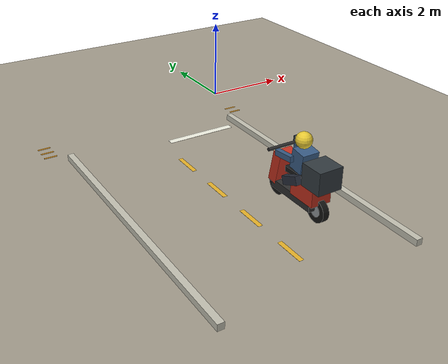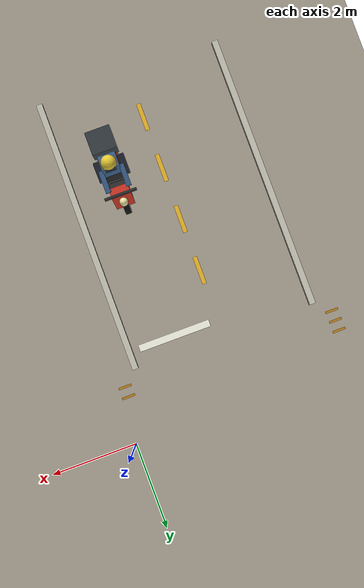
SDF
<sdf version="1.10">
 <world name="swan_market">
  <model name="ground">
   <static>true</static>
   <pose>15 0 -0.1 0 0 0</pose>
   <link name="body">
    <collision name="box_collision"><geometry><box><size>46 24 0.2</size></box></geometry></collision>
    <visual name="box_visual">
     <geometry><box><size>46 24 0.2</size></box></geometry>
     <material><ambient>0.64 0.61 0.55 1</ambient><diffuse>0.64 0.61 0.55 1</diffuse></material>
    </visual>
   </link>
  </model>
  <model name="entrance_curb_-4.83_-1">
   <static>true</static>
   <pose>-4.83 -4.8 0.07 0 0 0</pose>
   <link name="body">
    <collision name="box_collision"><geometry><box><size>0.14 6.4 0.14</size></box></geometry></collision>
    <visual name="box_visual">
     <geometry><box><size>0.14 6.4 0.14</size></box></geometry>
     <material><ambient>0.77 0.76 0.7 1</ambient><diffuse>0.77 0.76 0.7 1</diffuse></material>
    </visual>
   </link>
  </model>
  <model name="entrance_curb_-0.57_-1">
   <static>true</static>
   <pose>-0.57 -4.8 0.07 0 0 0</pose>
   <link name="body">
    <collision name="box_collision"><geometry><box><size>0.14 6.4 0.14</size></box></geometry></collision>
    <visual name="box_visual">
     <geometry><box><size>0.14 6.4 0.14</size></box></geometry>
     <material><ambient>0.77 0.76 0.7 1</ambient><diffuse>0.77 0.76 0.7 1</diffuse></material>
    </visual>
   </link>
  </model>
  <model name="road_stop_line_-1">
   <static>true</static>
   <pose>-1.65 -2 0.016 0 0 0</pose>
   <link name="body">
    <visual name="box_visual">
     <geometry><box><size>1.7 0.16 0.003</size></box></geometry>
     <material><ambient>0.95 0.95 0.89 1</ambient><diffuse>0.95 0.95 0.89 1</diffuse></material>
    </visual>
   </link>
  </model>
  <model name="road_center_line_-1_0">
   <static>true</static>
   <pose>-2.7 -3.2 0.016 0 0 0</pose>
   <link name="body">
    <visual name="box_visual">
     <geometry><box><size>0.1 0.65 0.003</size></box></geometry>
     <material><ambient>0.91 0.7 0.16 1</ambient><diffuse>0.91 0.7 0.16 1</diffuse></material>
    </visual>
   </link>
  </model>
  <model name="road_center_line_-1_1">
   <static>true</static>
   <pose>-2.7 -4.45 0.016 0 0 0</pose>
   <link name="body">
    <visual name="box_visual">
     <geometry><box><size>0.1 0.65 0.003</size></box></geometry>
     <material><ambient>0.91 0.7 0.16 1</ambient><diffuse>0.91 0.7 0.16 1</diffuse></material>
    </visual>
   </link>
  </model>
  <model name="road_center_line_-1_2">
   <static>true</static>
   <pose>-2.7 -5.7 0.016 0 0 0</pose>
   <link name="body">
    <visual name="box_visual">
     <geometry><box><size>0.1 0.65 0.003</size></box></geometry>
     <material><ambient>0.91 0.7 0.16 1</ambient><diffuse>0.91 0.7 0.16 1</diffuse></material>
    </visual>
   </link>
  </model>
  <model name="road_center_line_-1_3">
   <static>true</static>
   <pose>-2.7 -6.95 0.016 0 0 0</pose>
   <link name="body">
    <visual name="box_visual">
     <geometry><box><size>0.1 0.65 0.003</size></box></geometry>
     <material><ambient>0.91 0.7 0.16 1</ambient><diffuse>0.91 0.7 0.16 1</diffuse></material>
    </visual>
   </link>
  </model>
  <model name="tactile_mark_0_0">
   <static>true</static>
   <pose>-5.2 -1.3 0.022 0 0 0</pose>
   <link name="body">
    <visual name="box_visual">
     <geometry><box><size>0.3 0.055 0.002</size></box></geometry>
     <material><ambient>0.69 0.47 0.1 1</ambient><diffuse>0.69 0.47 0.1 1</diffuse></material>
    </visual>
   </link>
  </model>
  <model name="tactile_mark_0_1">
   <static>true</static>
   <pose>-5.2 -1.065 0.022 0 0 0</pose>
   <link name="body">
    <visual name="box_visual">
     <geometry><box><size>0.3 0.055 0.002</size></box></geometry>
     <material><ambient>0.69 0.47 0.1 1</ambient><diffuse>0.69 0.47 0.1 1</diffuse></material>
    </visual>
   </link>
  </model>
  <model name="tactile_mark_0_2">
   <static>true</static>
   <pose>-5.2 -0.83 0.022 0 0 0</pose>
   <link name="body">
    <visual name="box_visual">
     <geometry><box><size>0.3 0.055 0.002</size></box></geometry>
     <material><ambient>0.69 0.47 0.1 1</ambient><diffuse>0.69 0.47 0.1 1</diffuse></material>
    </visual>
   </link>
  </model>
  <model name="tactile_mark_1_0">
   <static>true</static>
   <pose>-0.2 -1.3 0.022 0 0 0</pose>
   <link name="body">
    <visual name="box_visual">
     <geometry><box><size>0.3 0.055 0.002</size></box></geometry>
     <material><ambient>0.69 0.47 0.1 1</ambient><diffuse>0.69 0.47 0.1 1</diffuse></material>
    </visual>
   </link>
  </model>
  <model name="tactile_mark_1_1">
   <static>true</static>
   <pose>-0.2 -1.065 0.022 0 0 0</pose>
   <link name="body">
    <visual name="box_visual">
     <geometry><box><size>0.3 0.055 0.002</size></box></geometry>
     <material><ambient>0.69 0.47 0.1 1</ambient><diffuse>0.69 0.47 0.1 1</diffuse></material>
    </visual>
   </link>
  </model>
  <model name="traffic_motorcycle_1">
   <static>true</static>
   <pose>-1.65 -5.8 0 0 0 1.5708</pose>
   <link name="body">
    <collision name="tire_0_collision">
     <pose>-0.61 0 0.25 1.5708 0 0</pose>
     <geometry><cylinder><radius>0.25</radius><length>0.14</length></cylinder></geometry>
    </collision>
    <visual name="tire_0_visual">
     <pose>-0.61 0 0.25 1.5708 0 0</pose>
     <geometry><cylinder><radius>0.25</radius><length>0.14</length></cylinder></geometry>
     <material><ambient>0.075 0.075 0.07 1</ambient><diffuse>0.075 0.075 0.07 1</diffuse></material>
    </visual>
    <visual name="hub_0_visual">
     <pose>-0.61 0 0.25 1.5708 0 0</pose>
     <geometry><cylinder><radius>0.13</radius><length>0.145</length></cylinder></geometry>
     <material><ambient>0.57 0.59 0.6 1</ambient><diffuse>0.57 0.59 0.6 1</diffuse></material>
    </visual>
    <collision name="tire_1_collision">
     <pose>0.62 0 0.25 1.5708 0 0</pose>
     <geometry><cylinder><radius>0.25</radius><length>0.14</length></cylinder></geometry>
    </collision>
    <visual name="tire_1_visual">
     <pose>0.62 0 0.25 1.5708 0 0</pose>
     <geometry><cylinder><radius>0.25</radius><length>0.14</length></cylinder></geometry>
     <material><ambient>0.075 0.075 0.07 1</ambient><diffuse>0.075 0.075 0.07 1</diffuse></material>
    </visual>
    <visual name="hub_1_visual">
     <pose>0.62 0 0.25 1.5708 0 0</pose>
     <geometry><cylinder><radius>0.13</radius><length>0.145</length></cylinder></geometry>
     <material><ambient>0.57 0.59 0.6 1</ambient><diffuse>0.57 0.59 0.6 1</diffuse></material>
    </visual>
    <collision name="deck_collision">
     <pose>0 0 0.33 0 0 0</pose>
     <geometry><box><size>1.2 0.43 0.17</size></box></geometry>
    </collision>
    <visual name="deck_visual">
     <pose>0 0 0.33 0 0 0</pose>
     <geometry><box><size>1.2 0.43 0.17</size></box></geometry>
     <material><ambient>0.18 0.18 0.18 1</ambient><diffuse>0.18 0.18 0.18 1</diffuse></material>
    </visual>
    <collision name="rear_body_collision">
     <pose>-0.36 0 0.59 0 0 0</pose>
     <geometry><box><size>0.65 0.46 0.4</size></box></geometry>
    </collision>
    <visual name="rear_body_visual">
     <pose>-0.36 0 0.59 0 0 0</pose>
     <geometry><box><size>0.65 0.46 0.4</size></box></geometry>
     <material><ambient>0.76 0.19 0.12 1</ambient><diffuse>0.76 0.19 0.12 1</diffuse></material>
    </visual>
    <collision name="seat_collision">
     <pose>-0.2 0 0.83 0 0 0</pose>
     <geometry><box><size>0.8 0.4 0.12</size></box></geometry>
    </collision>
    <visual name="seat_visual">
     <pose>-0.2 0 0.83 0 0 0</pose>
     <geometry><box><size>0.8 0.4 0.12</size></box></geometry>
     <material><ambient>0.1 0.1 0.1 1</ambient><diffuse>0.1 0.1 0.1 1</diffuse></material>
    </visual>
    <collision name="front_fairing_collision">
     <pose>0.53 0 0.69 0 -0.2 0</pose>
     <geometry><box><size>0.23 0.43 0.69</size></box></geometry>
    </collision>
    <visual name="front_fairing_visual">
     <pose>0.53 0 0.69 0 -0.2 0</pose>
     <geometry><box><size>0.23 0.43 0.69</size></box></geometry>
     <material><ambient>0.76 0.19 0.12 1</ambient><diffuse>0.76 0.19 0.12 1</diffuse></material>
    </visual>
    <collision name="handlebar_collision">
     <pose>0.56 0 1.12 1.5708 0 0</pose>
     <geometry><cylinder><radius>0.035</radius><length>0.72</length></cylinder></geometry>
    </collision>
    <visual name="handlebar_visual">
     <pose>0.56 0 1.12 1.5708 0 0</pose>
     <geometry><cylinder><radius>0.035</radius><length>0.72</length></cylinder></geometry>
     <material><ambient>0.18 0.18 0.18 1</ambient><diffuse>0.18 0.18 0.18 1</diffuse></material>
    </visual>
    <visual name="headlight_visual">
     <pose>0.7 0 0.94 0 0 0</pose>
     <geometry><sphere><radius>0.095</radius></sphere></geometry>
     <material><ambient>0.96 0.92 0.66 1</ambient><diffuse>0.96 0.92 0.66 1</diffuse></material>
    </visual>
    <collision name="delivery_box_collision">
     <pose>-0.65 0 1.01 0 0 0</pose>
     <geometry><box><size>0.51 0.55 0.48</size></box></geometry>
    </collision>
    <visual name="delivery_box_visual">
     <pose>-0.65 0 1.01 0 0 0</pose>
     <geometry><box><size>0.51 0.55 0.48</size></box></geometry>
     <material><ambient>0.2 0.23 0.25 1</ambient><diffuse>0.2 0.23 0.25 1</diffuse></material>
    </visual>
    <collision name="rider_torso_collision">
     <pose>-0.12 0 1.12 0 -0.15 0</pose>
     <geometry><box><size>0.33 0.39 0.43</size></box></geometry>
    </collision>
    <visual name="rider_torso_visual">
     <pose>-0.12 0 1.12 0 -0.15 0</pose>
     <geometry><box><size>0.33 0.39 0.43</size></box></geometry>
     <material><ambient>0.22 0.36 0.52 1</ambient><diffuse>0.22 0.36 0.52 1</diffuse></material>
    </visual>
    <collision name="helmet_collision">
     <pose>-0.07 0 1.51 0 0 0</pose>
     <geometry><sphere><radius>0.17</radius></sphere></geometry>
    </collision>
    <visual name="helmet_visual">
     <pose>-0.07 0 1.51 0 0 0</pose>
     <geometry><sphere><radius>0.17</radius></sphere></geometry>
     <material><ambient>0.91 0.79 0.2 1</ambient><diffuse>0.91 0.79 0.2 1</diffuse></material>
    </visual>
    <visual name="visor_visual">
     <pose>0.087 0 1.51 0 0 0</pose>
     <geometry><box><size>0.045 0.23 0.1</size></box></geometry>
     <material><ambient>0.13 0.17 0.2 1</ambient><diffuse>0.13 0.17 0.2 1</diffuse></material>
    </visual>
    <collision name="rider_leg_-1_collision">
     <pose>-0.12 -0.28 0.75 0 0.4 0</pose>
     <geometry><box><size>0.44 0.14 0.18</size></box></geometry>
    </collision>
    <visual name="rider_leg_-1_visual">
     <pose>-0.12 -0.28 0.75 0 0.4 0</pose>
     <geometry><box><size>0.44 0.14 0.18</size></box></geometry>
     <material><ambient>0.16 0.18 0.23 1</ambient><diffuse>0.16 0.18 0.23 1</diffuse></material>
    </visual>
    <collision name="rider_arm_-1_collision">
     <pose>0.2 -0.23 1.12 0 0.1 0</pose>
     <geometry><box><size>0.48 0.11 0.12</size></box></geometry>
    </collision>
    <visual name="rider_arm_-1_visual">
     <pose>0.2 -0.23 1.12 0 0.1 0</pose>
     <geometry><box><size>0.48 0.11 0.12</size></box></geometry>
     <material><ambient>0.22 0.36 0.52 1</ambient><diffuse>0.22 0.36 0.52 1</diffuse></material>
    </visual>
    <collision name="rider_leg_1_collision">
     <pose>-0.12 0.28 0.75 0 0.4 0</pose>
     <geometry><box><size>0.44 0.14 0.18</size></box></geometry>
    </collision>
    <visual name="rider_leg_1_visual">
     <pose>-0.12 0.28 0.75 0 0.4 0</pose>
     <geometry><box><size>0.44 0.14 0.18</size></box></geometry>
     <material><ambient>0.16 0.18 0.23 1</ambient><diffuse>0.16 0.18 0.23 1</diffuse></material>
    </visual>
    <collision name="rider_arm_1_collision">
     <pose>0.2 0.23 1.12 0 0.1 0</pose>
     <geometry><box><size>0.48 0.11 0.12</size></box></geometry>
    </collision>
    <visual name="rider_arm_1_visual">
     <pose>0.2 0.23 1.12 0 0.1 0</pose>
     <geometry><box><size>0.48 0.11 0.12</size></box></geometry>
     <material><ambient>0.22 0.36 0.52 1</ambient><diffuse>0.22 0.36 0.52 1</diffuse></material>
    </visual>
   </link>
  </model>
 </world>
</sdf>
